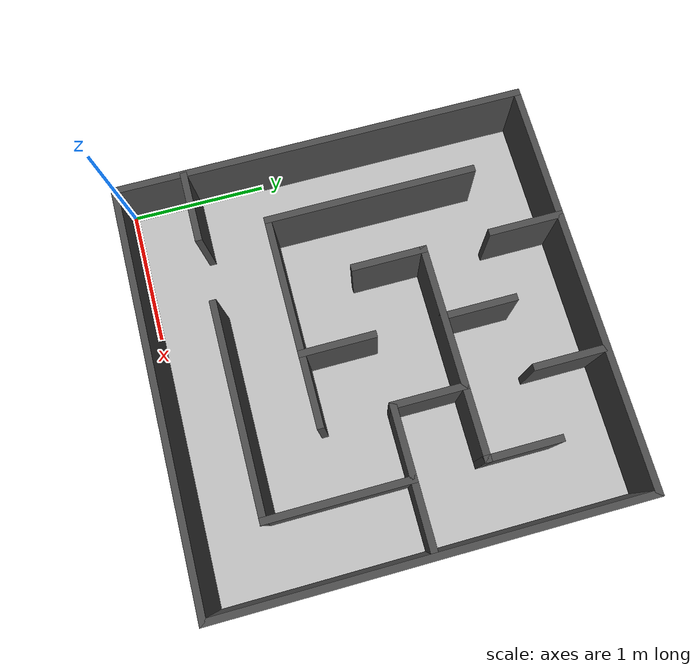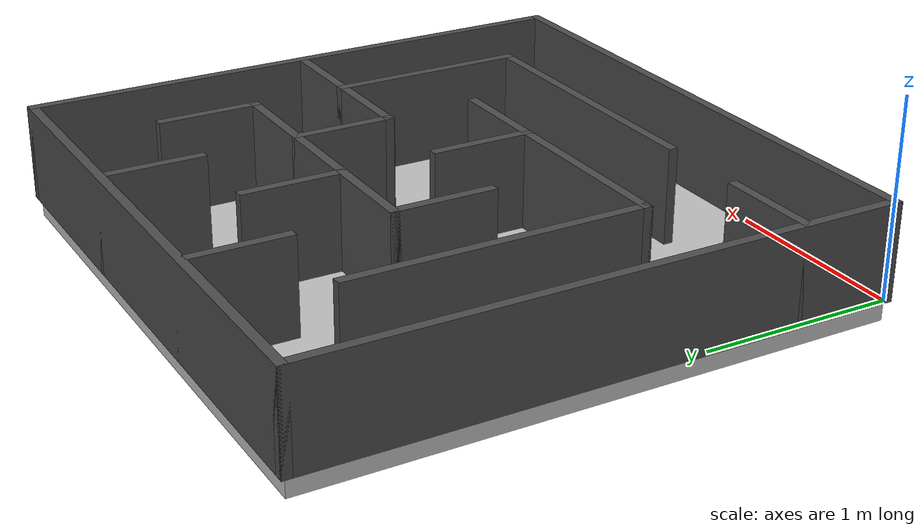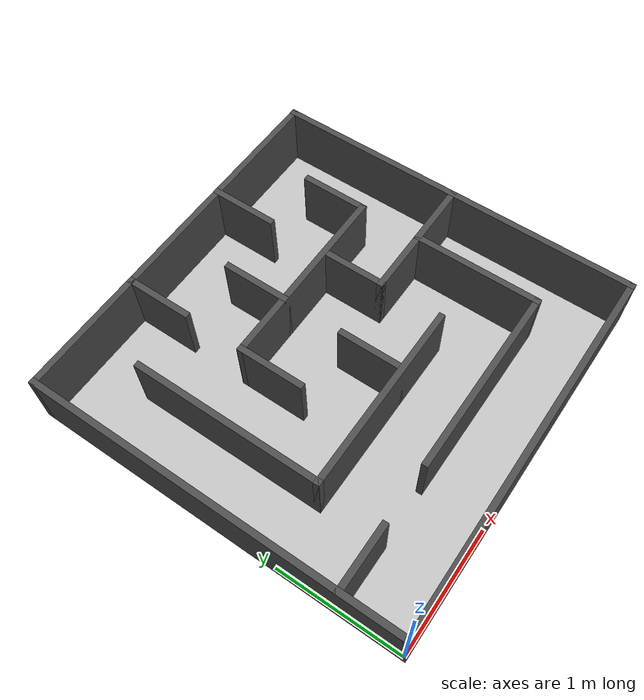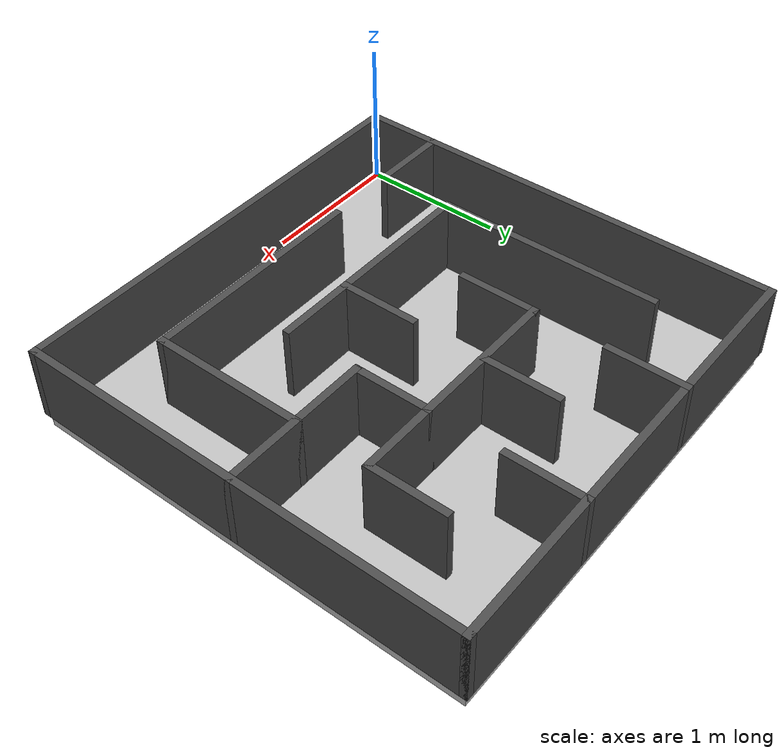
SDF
<?xml version="1.0"?>
<sdf version="1.6">
  <world name="robot_maze">

    <!-- ================= PHYSICS ================= -->
    <physics name="default_physics" type="ignored">
      <max_step_size>0.001</max_step_size>
      <real_time_factor>1.0</real_time_factor>
    </physics>

    <!-- ================= GAZEBO SYSTEMS ================= -->
    <plugin filename="gz-sim-physics-system"
            name="gz::sim::systems::Physics"/>

    <plugin filename="gz-sim-user-commands-system"
            name="gz::sim::systems::UserCommands"/>

    <plugin filename="gz-sim-scene-broadcaster-system"
            name="gz::sim::systems::SceneBroadcaster"/>

    <plugin filename="gz-sim-sensors-system"
        name="gz::sim::systems::Sensors">
       <render_engine>ogre2</render_engine>
    </plugin>

    <!-- ================= LIGHTING ================= -->
    <light name="sun" type="directional">
      <pose>1.5 1.5 5 0 0 0</pose>
      <cast_shadows>true</cast_shadows>
      <diffuse>0.8 0.8 0.8 1</diffuse>
      <specular>0.2 0.2 0.2 1</specular>
      <direction>-0.5 0.1 -0.9</direction>
    </light>

    <!-- ================= GROUND PLANE ================= -->
    <!-- Maze coordinates range from x=0 to 3 and y=0 to 3 -->
    <model name="ground_plane">
      <static>true</static>
      <pose>1.5 1.5 -0.05 0 0 0</pose>

      <link name="link">
        <collision name="collision">
          <geometry>
            <box>
              <size>3 3 0.1</size>
            </box>
          </geometry>
        </collision>

        <visual name="visual">
          <geometry>
            <box>
              <size>3 3 0.1</size>
            </box>
          </geometry>
          <material>
            <ambient>0.75 0.75 0.75 1</ambient>
            <diffuse>0.75 0.75 0.75 1</diffuse>
          </material>
        </visual>
      </link>
    </model>

    <!-- ================= MAZE WALLS ================= -->
    <model name="maze">
      <static>true</static>

      <!-- All walls: height 0.5 m, thickness 0.05 m -->

      <!-- OUTER TOP WALL -->
      <link name="outer_top">
        <pose>1.5 3.0 0.25 0 0 0</pose>
        <collision name="collision">
          <geometry>
            <box><size>3.05 0.05 0.5</size></box>
          </geometry>
        </collision>
        <visual name="visual">
          <geometry>
            <box><size>3.05 0.05 0.5</size></box>
          </geometry>
          <material>
            <ambient>0.2 0.2 0.2 1</ambient>
            <diffuse>0.3 0.3 0.3 1</diffuse>
          </material>
        </visual>
      </link>

      <!-- OUTER BOTTOM WALL -->
      <link name="outer_bottom">
        <pose>1.5 0.0 0.25 0 0 0</pose>
        <collision name="collision">
          <geometry>
            <box><size>3.05 0.05 0.5</size></box>
          </geometry>
        </collision>
        <visual name="visual">
          <geometry>
            <box><size>3.05 0.05 0.5</size></box>
          </geometry>
          <material>
            <ambient>0.2 0.2 0.2 1</ambient>
            <diffuse>0.3 0.3 0.3 1</diffuse>
          </material>
        </visual>
      </link>

      <!-- OUTER LEFT WALL -->
      <link name="outer_left">
        <pose>0.0 1.5 0.25 0 0 0</pose>
        <collision name="collision">
          <geometry>
            <box><size>0.05 3.05 0.5</size></box>
          </geometry>
        </collision>
        <visual name="visual">
          <geometry>
            <box><size>0.05 3.05 0.5</size></box>
          </geometry>
          <material>
            <ambient>0.2 0.2 0.2 1</ambient>
            <diffuse>0.3 0.3 0.3 1</diffuse>
          </material>
        </visual>
      </link>

      <!-- OUTER RIGHT WALL -->
      <link name="outer_right">
        <pose>3.0 1.5 0.25 0 0 0</pose>
        <collision name="collision">
          <geometry>
            <box><size>0.05 3.05 0.5</size></box>
          </geometry>
        </collision>
        <visual name="visual">
          <geometry>
            <box><size>0.05 3.05 0.5</size></box>
          </geometry>
          <material>
            <ambient>0.2 0.2 0.2 1</ambient>
            <diffuse>0.3 0.3 0.3 1</diffuse>
          </material>
        </visual>
      </link>

      <!-- ========== INTERIOR VERTICAL WALLS ========== -->

      <link name="v1">
        <pose>1.0 2.75 0.25 0 0 0</pose>
        <collision name="collision">
          <geometry><box><size>0.05 0.55 0.5</size></box></geometry>
        </collision>
        <visual name="visual">
          <geometry><box><size>0.05 0.55 0.5</size></box></geometry>
          <material><ambient>0.2 0.2 0.2 1</ambient><diffuse>0.3 0.3 0.3 1</diffuse></material>
        </visual>
      </link>

      <link name="v2">
        <pose>2.0 2.75 0.25 0 0 0</pose>
        <collision name="collision">
          <geometry><box><size>0.05 0.55 0.5</size></box></geometry>
        </collision>
        <visual name="visual">
          <geometry><box><size>0.05 0.55 0.5</size></box></geometry>
          <material><ambient>0.2 0.2 0.2 1</ambient><diffuse>0.3 0.3 0.3 1</diffuse></material>
        </visual>
      </link>

      <link name="v3">
        <pose>0.5 1.75 0.25 0 0 0</pose>
        <collision name="collision">
          <geometry><box><size>0.05 1.55 0.5</size></box></geometry>
        </collision>
        <visual name="visual">
          <geometry><box><size>0.05 1.55 0.5</size></box></geometry>
          <material><ambient>0.2 0.2 0.2 1</ambient><diffuse>0.3 0.3 0.3 1</diffuse></material>
        </visual>
      </link>

      <link name="v4">
        <pose>1.5 2.25 0.25 0 0 0</pose>
        <collision name="collision">
          <geometry><box><size>0.05 0.55 0.5</size></box></geometry>
        </collision>
        <visual name="visual">
          <geometry><box><size>0.05 0.55 0.5</size></box></geometry>
          <material><ambient>0.2 0.2 0.2 1</ambient><diffuse>0.3 0.3 0.3 1</diffuse></material>
        </visual>
      </link>

      <link name="v5">
        <pose>2.5 2.25 0.25 0 0 0</pose>
        <collision name="collision">
          <geometry><box><size>0.05 0.55 0.5</size></box></geometry>
        </collision>
        <visual name="visual">
          <geometry><box><size>0.05 0.55 0.5</size></box></geometry>
          <material><ambient>0.2 0.2 0.2 1</ambient><diffuse>0.3 0.3 0.3 1</diffuse></material>
        </visual>
      </link>

      <link name="v6">
        <pose>1.0 1.75 0.25 0 0 0</pose>
        <collision name="collision">
          <geometry><box><size>0.05 0.55 0.5</size></box></geometry>
        </collision>
        <visual name="visual">
          <geometry><box><size>0.05 0.55 0.5</size></box></geometry>
          <material><ambient>0.2 0.2 0.2 1</ambient><diffuse>0.3 0.3 0.3 1</diffuse></material>
        </visual>
      </link>

      <link name="v7">
        <pose>2.0 1.75 0.25 0 0 0</pose>
        <collision name="collision">
          <geometry><box><size>0.05 0.55 0.5</size></box></geometry>
        </collision>
        <visual name="visual">
          <geometry><box><size>0.05 0.55 0.5</size></box></geometry>
          <material><ambient>0.2 0.2 0.2 1</ambient><diffuse>0.3 0.3 0.3 1</diffuse></material>
        </visual>
      </link>

      <link name="v8">
        <pose>1.5 1.25 0.25 0 0 0</pose>
        <collision name="collision">
          <geometry><box><size>0.05 0.55 0.5</size></box></geometry>
        </collision>
        <visual name="visual">
          <geometry><box><size>0.05 0.55 0.5</size></box></geometry>
          <material><ambient>0.2 0.2 0.2 1</ambient><diffuse>0.3 0.3 0.3 1</diffuse></material>
        </visual>
      </link>

      <link name="v9">
        <pose>2.5 1.0 0.25 0 0 0</pose>
        <collision name="collision">
          <geometry><box><size>0.05 1.05 0.5</size></box></geometry>
        </collision>
        <visual name="visual">
          <geometry><box><size>0.05 1.05 0.5</size></box></geometry>
          <material><ambient>0.2 0.2 0.2 1</ambient><diffuse>0.3 0.3 0.3 1</diffuse></material>
        </visual>
      </link>

      <!-- ========== INTERIOR HORIZONTAL WALLS ========== -->

      <link name="h1">
        <pose>1.75 2.0 0.25 0 0 0</pose>
        <collision name="collision">
          <geometry><box><size>1.55 0.05 0.5</size></box></geometry>
        </collision>
        <visual name="visual">
          <geometry><box><size>1.55 0.05 0.5</size></box></geometry>
          <material><ambient>0.2 0.2 0.2 1</ambient><diffuse>0.3 0.3 0.3 1</diffuse></material>
        </visual>
      </link>

      <link name="h2">
        <pose>2.5 1.5 0.25 0 0 0</pose>
        <collision name="collision">
          <geometry><box><size>1.05 0.05 0.5</size></box></geometry>
        </collision>
        <visual name="visual">
          <geometry><box><size>1.05 0.05 0.5</size></box></geometry>
          <material><ambient>0.2 0.2 0.2 1</ambient><diffuse>0.3 0.3 0.3 1</diffuse></material>
        </visual>
      </link>

      <link name="h3">
        <pose>1.25 1.0 0.25 0 0 0</pose>
        <collision name="collision">
          <geometry><box><size>1.55 0.05 0.5</size></box></geometry>
        </collision>
        <visual name="visual">
          <geometry><box><size>1.55 0.05 0.5</size></box></geometry>
          <material><ambient>0.2 0.2 0.2 1</ambient><diffuse>0.3 0.3 0.3 1</diffuse></material>
        </visual>
      </link>

      <link name="h4">
        <pose>0.25 0.5 0.25 0 0 0</pose>
        <collision name="collision">
          <geometry><box><size>0.55 0.05 0.5</size></box></geometry>
        </collision>
        <visual name="visual">
          <geometry><box><size>0.55 0.05 0.5</size></box></geometry>
          <material><ambient>0.2 0.2 0.2 1</ambient><diffuse>0.3 0.3 0.3 1</diffuse></material>
        </visual>
      </link>

      <link name="h5">
        <pose>1.75 0.5 0.25 0 0 0</pose>
        <collision name="collision">
          <geometry><box><size>1.55 0.05 0.5</size></box></geometry>
        </collision>
        <visual name="visual">
          <geometry><box><size>1.55 0.05 0.5</size></box></geometry>
          <material><ambient>0.2 0.2 0.2 1</ambient><diffuse>0.3 0.3 0.3 1</diffuse></material>
        </visual>
      </link>

    </model>

    <!-- ================= CAMERA VIEW ================= -->
    <gui>
      <camera name="top_view">
        <pose>1.5 1.5 6 0 1.5708 0</pose>
      </camera>
    </gui>

  </world>
</sdf>
